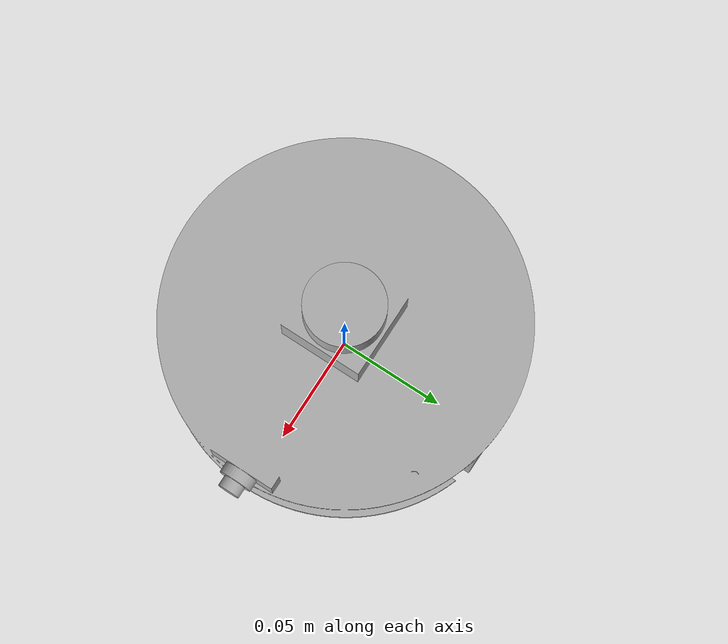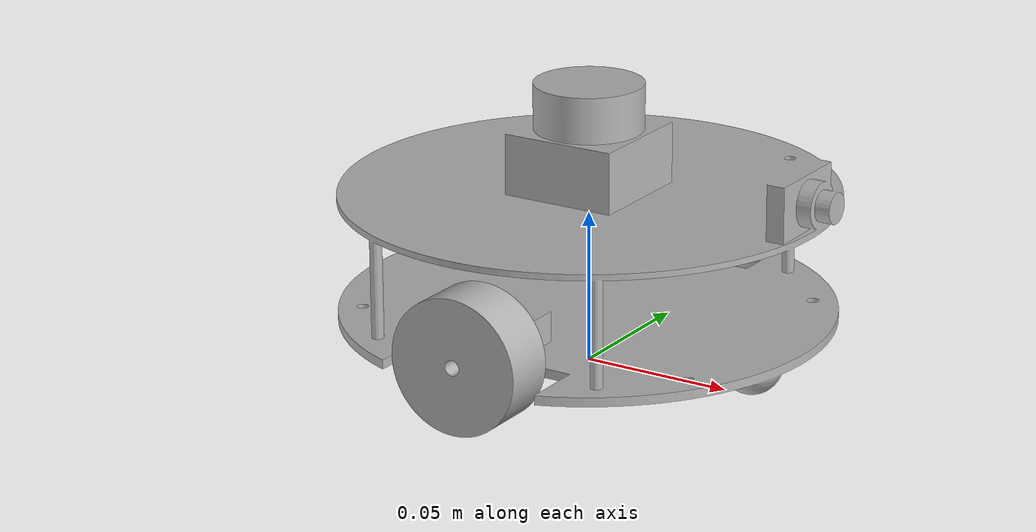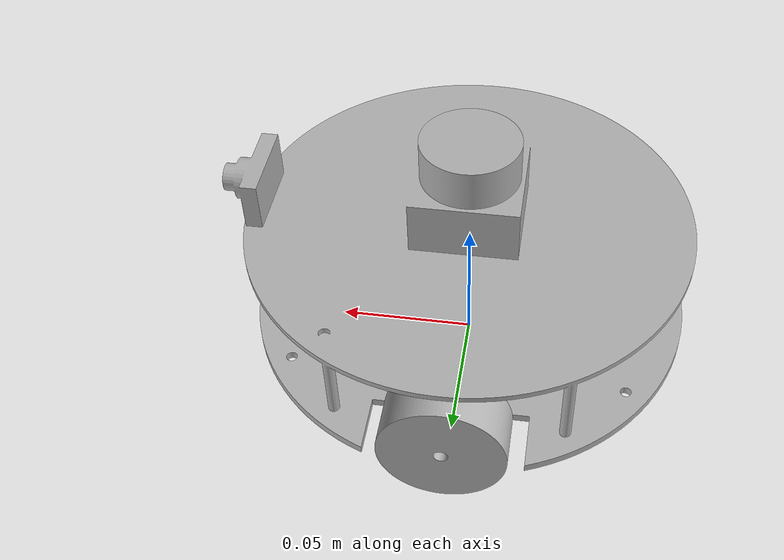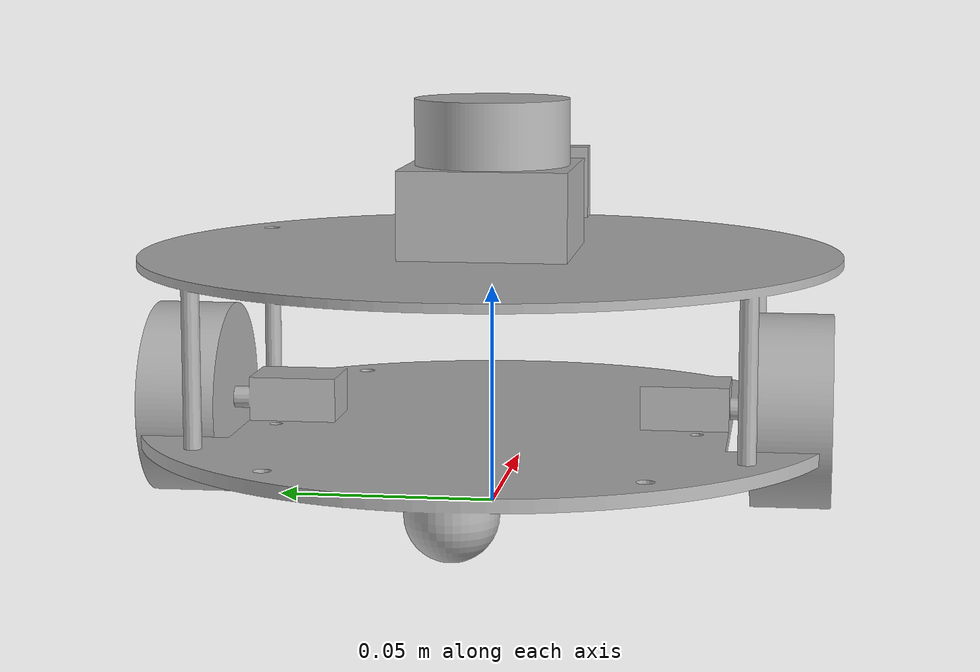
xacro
<?xml version="1.0" ?>
<robot name="ros_amf_robot" xmlns:xacro="http://www.ros.org/wiki/xacro">

<xacro:include filename="$(find ros_amf_robot_description)/urdf/materials.xacro" />
<xacro:include filename="$(find ros_amf_robot_description)/urdf/ros_amf_robot.ros2control.xml" />
<xacro:include filename="$(find ros_amf_robot_description)/urdf/ros_amf_robot.gazebo" />
<link name="base_link">
  <inertial>
    <origin xyz="0.0021899740700695143 0.00031037632221902084 0.04084925484756619" rpy="0 0 0"/>
    <mass value="1.112129708784983"/>
    <inertia ixx="0.001753" iyy="0.002291" izz="0.002883" ixy="2e-06" iyz="2e-06" ixz="-7.8e-05"/>
  </inertial>
  <visual>
    <origin xyz="0 0 0" rpy="0 0 0"/>
    <geometry>
      <mesh filename="file://$(find ros_amf_robot_description)/meshes/base_link.stl" scale="0.001 0.001 0.001"/>
    </geometry>
    <material name="silver"/>
  </visual>
  <collision>
    <origin xyz="0 0 0" rpy="0 0 0"/>
    <geometry>
      <mesh filename="file://$(find ros_amf_robot_description)/meshes/base_link.stl" scale="0.001 0.001 0.001"/>
    </geometry>
  </collision>
</link>

<link name="right_wheel_link">
  <inertial>
    <origin xyz="3.4842872277120965e-07 -0.008999602483749411 1.0430812463768646e-10" rpy="0 0 0"/>
    <mass value="0.21207658929268144"/>
    <inertia ixx="3.2e-05" iyy="5.2e-05" izz="3.2e-05" ixy="-0.0" iyz="-0.0" ixz="-0.0"/>
  </inertial>
  <visual>
    <origin xyz="0.000554 0.059626 -0.023" rpy="0 0 0"/>
    <geometry>
      <mesh filename="file://$(find ros_amf_robot_description)/meshes/rightmotor_link_1.stl" scale="0.001 0.001 0.001"/>
    </geometry>
    <material name="silver"/>
  </visual>
  <collision>
    <origin xyz="0.000554 0.059626 -0.023" rpy="0 0 0"/>
    <geometry>
      <mesh filename="file://$(find ros_amf_robot_description)/meshes/rightmotor_link_1.stl" scale="0.001 0.001 0.001"/>
    </geometry>
  </collision>
</link>

<link name="left_wheel_link">
  <inertial>
    <origin xyz="3.484287296099233e-07 0.009000397516250619 1.0430812463768646e-10" rpy="0 0 0"/>
    <mass value="0.2120765892926817"/>
    <inertia ixx="3.2e-05" iyy="5.2e-05" izz="3.2e-05" ixy="-0.0" iyz="0.0" ixz="-0.0"/>
  </inertial>
  <visual>
    <origin xyz="0.000554 -0.060374 -0.023" rpy="0 0 0"/>
    <geometry>
      <mesh filename="file://$(find ros_amf_robot_description)/meshes/leftmotor_link_1.stl" scale="0.001 0.001 0.001"/>
    </geometry>
    <material name="silver"/>
  </visual>
  <collision>
    <origin xyz="0.000554 -0.060374 -0.023" rpy="0 0 0"/>
    <geometry>
      <mesh filename="file://$(find ros_amf_robot_description)/meshes/leftmotor_link_1.stl" scale="0.001 0.001 0.001"/>
    </geometry>
  </collision>
</link>

<link name="laser_link">
  <inertial>
    <origin xyz="2.420079634146455e-18 2.420079634146455e-18 0.007500000000000007" rpy="0 0 0"/>
    <mass value="0.11523919289713833"/>
    <inertia ixx="1.1e-05" iyy="1.1e-05" izz="1.8e-05" ixy="0.0" iyz="0.0" ixz="0.0"/>
  </inertial>
  <visual>
    <origin xyz="-0.0 -0.0 -0.078" rpy="0 0 0"/>
    <geometry>
      <mesh filename="file://$(find ros_amf_robot_description)/meshes/laser_link_1.stl" scale="0.001 0.001 0.001"/>
    </geometry>
    <material name="silver"/>
  </visual>
  <collision>
    <origin xyz="-0.0 -0.0 -0.078" rpy="0 0 0"/>
    <geometry>
      <mesh filename="file://$(find ros_amf_robot_description)/meshes/laser_link_1.stl" scale="0.001 0.001 0.001"/>
    </geometry>
  </collision>
</link>

<joint name="right_wheel_joint" type="continuous">
  <origin xyz="-0.000554 -0.059626 0.023" rpy="0 0 0"/>
  <parent link="base_link"/>
  <child link="right_wheel_link"/>
  <axis xyz="0.0 -1.0 0.0"/>
</joint>

<joint name="left_wheel_joint" type="continuous">
  <origin xyz="-0.000554 0.060374 0.023" rpy="0 0 0"/>
  <parent link="base_link"/>
  <child link="left_wheel_link"/>
  <axis xyz="0.0 1.0 0.0"/>
</joint>

<joint name="lidar_joint" type="fixed">
  <origin xyz="0.0 0.0 0.078" rpy="0 0 0"/>
  <parent link="base_link"/>
  <child link="laser_link"/>
  <axis xyz="0.0 0.0 1.0"/>
</joint>

</robot>

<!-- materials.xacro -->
<robot name="ros_amf_robot" xmlns:xacro="http://www.ros.org/wiki/xacro" >

<material name="silver">
  <color rgba="0.700 0.700 0.700 1.000"/>
</material>

</robot>

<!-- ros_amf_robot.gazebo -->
<robot name="ros_amf_robot" xmlns:xacro="http://www.ros.org/wiki/xacro" >

<xacro:property name="body_color" value="Gazebo/Silver" />

<gazebo reference="base_link">
  <material>${body_color}</material>
  <mu1>0.2</mu1>
  <mu2>0.2</mu2>
  <self_collide>true</self_collide>
  <gravity>true</gravity>
</gazebo>

<gazebo reference="rightmotor_link_1">
  <material>${body_color}</material>
  <mu1>0.2</mu1>
  <mu2>0.2</mu2>
  <self_collide>true</self_collide>
</gazebo>

<gazebo reference="leftmotor_link_1">
  <material>${body_color}</material>
  <mu1>0.2</mu1>
  <mu2>0.2</mu2>
  <self_collide>true</self_collide>
</gazebo>

<gazebo reference="laser_link_1">
  <material>${body_color}</material>
  <mu1>0.2</mu1>
  <mu2>0.2</mu2>
  <self_collide>true</self_collide>
</gazebo>

</robot>
